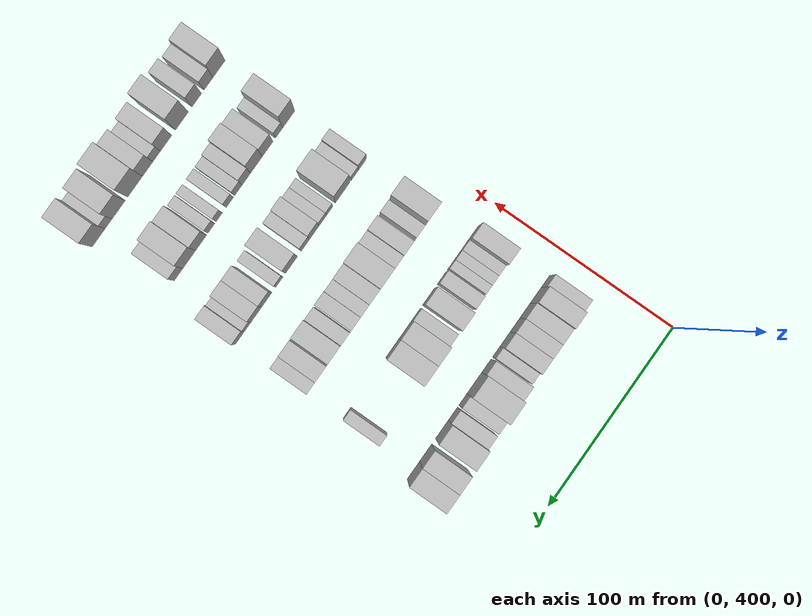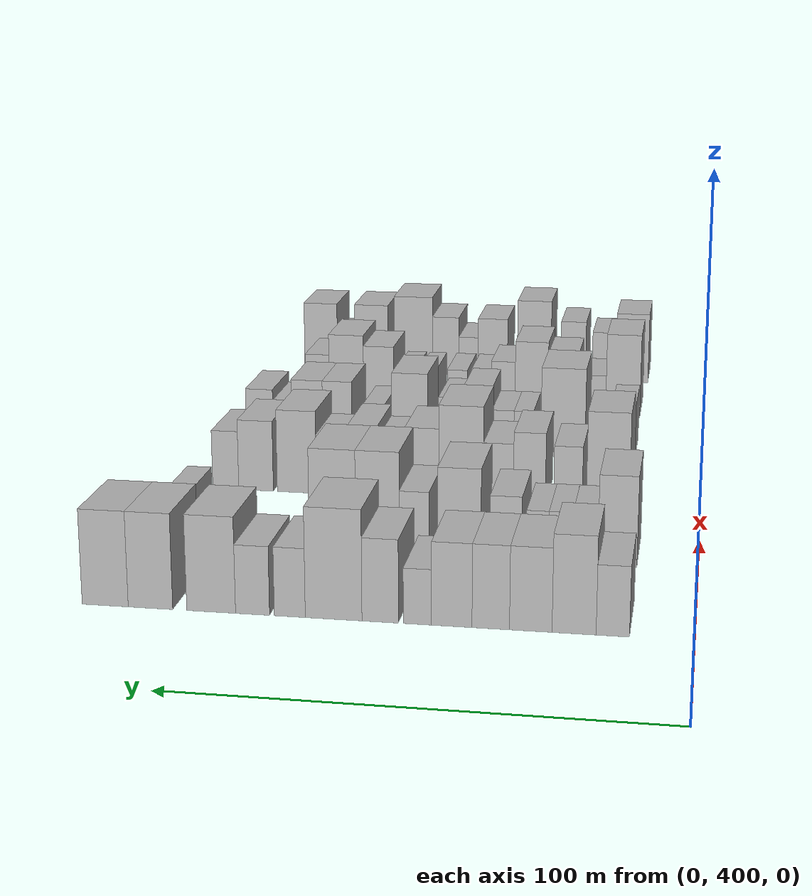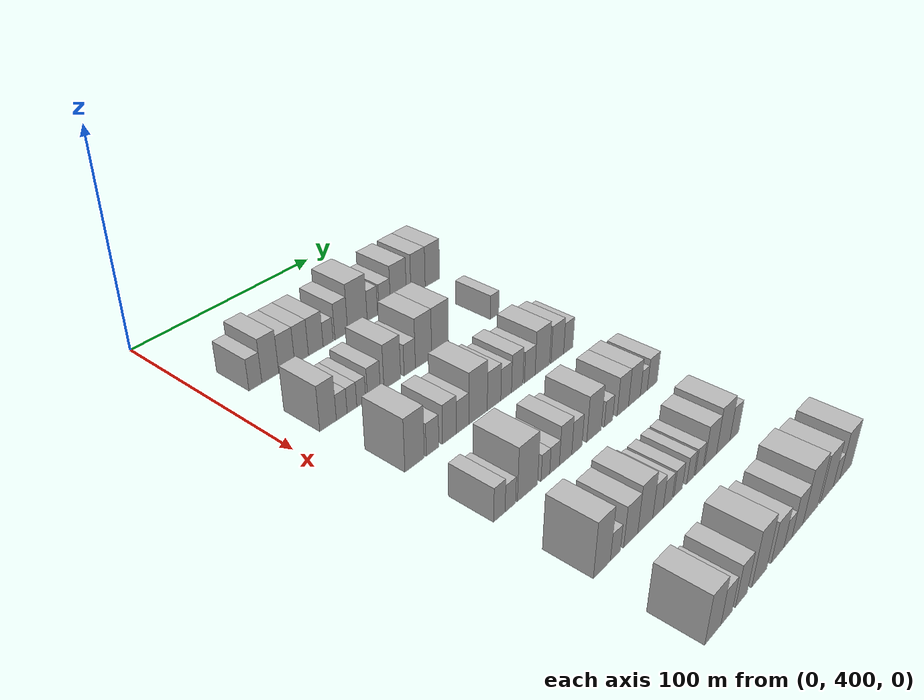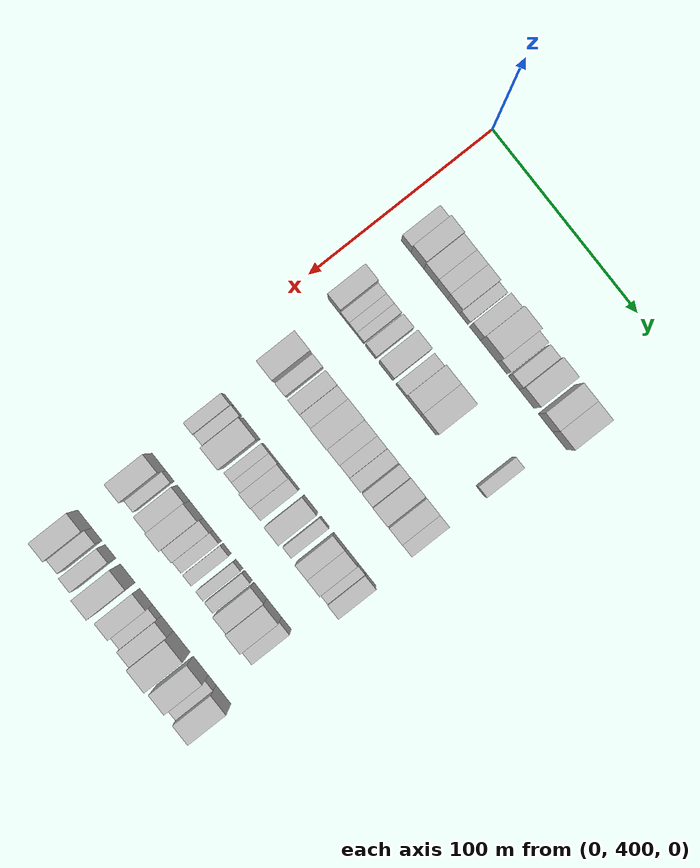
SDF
<sdf version="1.6">
 <world name="default">
  <model name="building_119">
   <static>1</static>
   <pose>50.0000 416.3820 0 0.000000 0.000000 0.000000</pose>
   <link name="link">
    <pose>0 0 7.50 0 0 0</pose>
    <collision name="collision"><geometry><box><size>20.0000 6.6826 15.0000</size></box></geometry></collision>
    <visual name="visual">
     <cast_shadows>0</cast_shadows>
     <geometry><box><size>20.0000 6.6826 15.0000</size></box></geometry>
     <material>
      <script>
       <uri>model://HANNAS_wall/materials/scripts</uri>
       <uri>model://HANNAS_wall/materials/textures</uri>
       <name>vrc/HANNAS_wall</name>
      </script>
     </material>
    </visual>
   </link>
  </model>
  <model name="building_120">
   <static>1</static>
   <pose>50.0000 424.1537 0 0.000000 0.000000 0.000000</pose>
   <link name="link">
    <pose>0 0 10.50 0 0 0</pose>
    <collision name="collision"><geometry><box><size>20.0000 8.8607 21.0000</size></box></geometry></collision>
    <visual name="visual">
     <cast_shadows>0</cast_shadows>
     <geometry><box><size>20.0000 8.8607 21.0000</size></box></geometry>
     <material>
      <script>
       <uri>model://HANNAS_wall/materials/scripts</uri>
       <uri>model://HANNAS_wall/materials/textures</uri>
       <name>vrc/HANNAS_wall</name>
      </script>
     </material>
    </visual>
   </link>
  </model>
  <model name="building_121">
   <static>1</static>
   <pose>50.0000 432.8886 0 0.000000 0.000000 0.000000</pose>
   <link name="link">
    <pose>0 0 9.00 0 0 0</pose>
    <collision name="collision"><geometry><box><size>20.0000 8.6093 18.0000</size></box></geometry></collision>
    <visual name="visual">
     <cast_shadows>0</cast_shadows>
     <geometry><box><size>20.0000 8.6093 18.0000</size></box></geometry>
     <material>
      <script>
       <uri>model://HANNAS_wall/materials/scripts</uri>
       <uri>model://HANNAS_wall/materials/textures</uri>
       <name>vrc/HANNAS_wall</name>
      </script>
     </material>
    </visual>
   </link>
  </model>
  <model name="building_122">
   <static>1</static>
   <pose>50.0000 441.0161 0 0.000000 0.000000 0.000000</pose>
   <link name="link">
    <pose>0 0 9.00 0 0 0</pose>
    <collision name="collision"><geometry><box><size>20.0000 7.6456 18.0000</size></box></geometry></collision>
    <visual name="visual">
     <cast_shadows>0</cast_shadows>
     <geometry><box><size>20.0000 7.6456 18.0000</size></box></geometry>
     <material>
      <script>
       <uri>model://HANNAS_wall/materials/scripts</uri>
       <uri>model://HANNAS_wall/materials/textures</uri>
       <name>vrc/HANNAS_wall</name>
      </script>
     </material>
    </visual>
   </link>
  </model>
  <model name="building_123">
   <static>1</static>
   <pose>50.0000 449.0002 0 0.000000 0.000000 0.000000</pose>
   <link name="link">
    <pose>0 0 9.00 0 0 0</pose>
    <collision name="collision"><geometry><box><size>20.0000 8.3225 18.0000</size></box></geometry></collision>
    <visual name="visual">
     <cast_shadows>0</cast_shadows>
     <geometry><box><size>20.0000 8.3225 18.0000</size></box></geometry>
     <material>
      <script>
       <uri>model://HANNAS_wall/materials/scripts</uri>
       <uri>model://HANNAS_wall/materials/textures</uri>
       <name>vrc/HANNAS_wall</name>
      </script>
     </material>
    </visual>
   </link>
  </model>
  <model name="building_124">
   <static>1</static>
   <pose>50.0000 456.0613 0 0.000000 0.000000 0.000000</pose>
   <link name="link">
    <pose>0 0 6.00 0 0 0</pose>
    <collision name="collision"><geometry><box><size>20.0000 5.7997 12.0000</size></box></geometry></collision>
    <visual name="visual">
     <cast_shadows>0</cast_shadows>
     <geometry><box><size>20.0000 5.7997 12.0000</size></box></geometry>
     <material>
      <script>
       <uri>model://HANNAS_wall/materials/scripts</uri>
       <uri>model://HANNAS_wall/materials/textures</uri>
       <name>vrc/HANNAS_wall</name>
      </script>
     </material>
    </visual>
   </link>
  </model>
  <model name="building_125">
   <static>1</static>
   <pose>50.0000 463.7421 0 0.000000 0.000000 0.000000</pose>
   <link name="link">
    <pose>0 0 9.00 0 0 0</pose>
    <collision name="collision"><geometry><box><size>20.0000 7.5619 18.0000</size></box></geometry></collision>
    <visual name="visual">
     <cast_shadows>0</cast_shadows>
     <geometry><box><size>20.0000 7.5619 18.0000</size></box></geometry>
     <material>
      <script>
       <uri>model://HANNAS_wall/materials/scripts</uri>
       <uri>model://HANNAS_wall/materials/textures</uri>
       <name>vrc/HANNAS_wall</name>
      </script>
     </material>
    </visual>
   </link>
  </model>
  <model name="building_126">
   <static>1</static>
   <pose>50.0000 473.4452 0 0.000000 0.000000 0.000000</pose>
   <link name="link">
    <pose>0 0 12.00 0 0 0</pose>
    <collision name="collision"><geometry><box><size>20.0000 11.8442 24.0000</size></box></geometry></collision>
    <visual name="visual">
     <cast_shadows>0</cast_shadows>
     <geometry><box><size>20.0000 11.8442 24.0000</size></box></geometry>
     <material>
      <script>
       <uri>model://HANNAS_wall/materials/scripts</uri>
       <uri>model://HANNAS_wall/materials/textures</uri>
       <name>vrc/HANNAS_wall</name>
      </script>
     </material>
    </visual>
   </link>
  </model>
  <model name="building_127">
   <static>1</static>
   <pose>50.0000 482.6233 0 0.000000 0.000000 0.000000</pose>
   <link name="link">
    <pose>0 0 7.50 0 0 0</pose>
    <collision name="collision"><geometry><box><size>20.0000 6.5120 15.0000</size></box></geometry></collision>
    <visual name="visual">
     <cast_shadows>0</cast_shadows>
     <geometry><box><size>20.0000 6.5120 15.0000</size></box></geometry>
     <material>
      <script>
       <uri>model://HANNAS_wall/materials/scripts</uri>
       <uri>model://HANNAS_wall/materials/textures</uri>
       <name>vrc/HANNAS_wall</name>
      </script>
     </material>
    </visual>
   </link>
  </model>
  <model name="building_128">
   <static>1</static>
   <pose>50.0000 490.4860 0 0.000000 0.000000 0.000000</pose>
   <link name="link">
    <pose>0 0 7.50 0 0 0</pose>
    <collision name="collision"><geometry><box><size>20.0000 7.2134 15.0000</size></box></geometry></collision>
    <visual name="visual">
     <cast_shadows>0</cast_shadows>
     <geometry><box><size>20.0000 7.2134 15.0000</size></box></geometry>
     <material>
      <script>
       <uri>model://HANNAS_wall/materials/scripts</uri>
       <uri>model://HANNAS_wall/materials/textures</uri>
       <name>vrc/HANNAS_wall</name>
      </script>
     </material>
    </visual>
   </link>
  </model>
  <model name="building_129">
   <static>1</static>
   <pose>50.0000 499.2937 0 0.000000 0.000000 0.000000</pose>
   <link name="link">
    <pose>0 0 10.50 0 0 0</pose>
    <collision name="collision"><geometry><box><size>20.0000 10.4020 21.0000</size></box></geometry></collision>
    <visual name="visual">
     <cast_shadows>0</cast_shadows>
     <geometry><box><size>20.0000 10.4020 21.0000</size></box></geometry>
     <material>
      <script>
       <uri>model://HANNAS_wall/materials/scripts</uri>
       <uri>model://HANNAS_wall/materials/textures</uri>
       <name>vrc/HANNAS_wall</name>
      </script>
     </material>
    </visual>
   </link>
  </model>
  <model name="building_130">
   <static>1</static>
   <pose>50.0000 512.2963 0 0.000000 0.000000 0.000000</pose>
   <link name="link">
    <pose>0 0 10.50 0 0 0</pose>
    <collision name="collision"><geometry><box><size>20.0000 9.6032 21.0000</size></box></geometry></collision>
    <visual name="visual">
     <cast_shadows>0</cast_shadows>
     <geometry><box><size>20.0000 9.6032 21.0000</size></box></geometry>
     <material>
      <script>
       <uri>model://HANNAS_wall/materials/scripts</uri>
       <uri>model://HANNAS_wall/materials/textures</uri>
       <name>vrc/HANNAS_wall</name>
      </script>
     </material>
    </visual>
   </link>
  </model>
  <model name="building_131">
   <static>1</static>
   <pose>50.0000 522.0898 0 0.000000 0.000000 0.000000</pose>
   <link name="link">
    <pose>0 0 10.50 0 0 0</pose>
    <collision name="collision"><geometry><box><size>20.0000 9.9838 21.0000</size></box></geometry></collision>
    <visual name="visual">
     <cast_shadows>0</cast_shadows>
     <geometry><box><size>20.0000 9.9838 21.0000</size></box></geometry>
     <material>
      <script>
       <uri>model://HANNAS_wall/materials/scripts</uri>
       <uri>model://HANNAS_wall/materials/textures</uri>
       <name>vrc/HANNAS_wall</name>
      </script>
     </material>
    </visual>
   </link>
  </model>
  <model name="building_257">
   <static>1</static>
   <pose>90.0000 417.7783 0 0.000000 0.000000 0.000000</pose>
   <link name="link">
    <pose>0 0 10.50 0 0 0</pose>
    <collision name="collision"><geometry><box><size>20.0000 8.6246 21.0000</size></box></geometry></collision>
    <visual name="visual">
     <cast_shadows>0</cast_shadows>
     <geometry><box><size>20.0000 8.6246 21.0000</size></box></geometry>
     <material>
      <script>
       <uri>model://HANNAS_wall/materials/scripts</uri>
       <uri>model://HANNAS_wall/materials/textures</uri>
       <name>vrc/HANNAS_wall</name>
      </script>
     </material>
    </visual>
   </link>
  </model>
  <model name="building_258">
   <static>1</static>
   <pose>90.0000 424.9296 0 0.000000 0.000000 0.000000</pose>
   <link name="link">
    <pose>0 0 6.00 0 0 0</pose>
    <collision name="collision"><geometry><box><size>20.0000 5.6781 12.0000</size></box></geometry></collision>
    <visual name="visual">
     <cast_shadows>0</cast_shadows>
     <geometry><box><size>20.0000 5.6781 12.0000</size></box></geometry>
     <material>
      <script>
       <uri>model://HANNAS_wall/materials/scripts</uri>
       <uri>model://HANNAS_wall/materials/textures</uri>
       <name>vrc/HANNAS_wall</name>
      </script>
     </material>
    </visual>
   </link>
  </model>
  <model name="building_259">
   <static>1</static>
   <pose>90.0000 430.3987 0 0.000000 0.000000 0.000000</pose>
   <link name="link">
    <pose>0 0 6.00 0 0 0</pose>
    <collision name="collision"><geometry><box><size>20.0000 5.2599 12.0000</size></box></geometry></collision>
    <visual name="visual">
     <cast_shadows>0</cast_shadows>
     <geometry><box><size>20.0000 5.2599 12.0000</size></box></geometry>
     <material>
      <script>
       <uri>model://HANNAS_wall/materials/scripts</uri>
       <uri>model://HANNAS_wall/materials/textures</uri>
       <name>vrc/HANNAS_wall</name>
      </script>
     </material>
    </visual>
   </link>
  </model>
  <model name="building_260">
   <static>1</static>
   <pose>90.0000 435.5072 0 0.000000 0.000000 0.000000</pose>
   <link name="link">
    <pose>0 0 6.00 0 0 0</pose>
    <collision name="collision"><geometry><box><size>20.0000 4.9571 12.0000</size></box></geometry></collision>
    <visual name="visual">
     <cast_shadows>0</cast_shadows>
     <geometry><box><size>20.0000 4.9571 12.0000</size></box></geometry>
     <material>
      <script>
       <uri>model://HANNAS_wall/materials/scripts</uri>
       <uri>model://HANNAS_wall/materials/textures</uri>
       <name>vrc/HANNAS_wall</name>
      </script>
     </material>
    </visual>
   </link>
  </model>
  <model name="building_261">
   <static>1</static>
   <pose>90.0000 442.5650 0 0.000000 0.000000 0.000000</pose>
   <link name="link">
    <pose>0 0 7.50 0 0 0</pose>
    <collision name="collision"><geometry><box><size>20.0000 7.1585 15.0000</size></box></geometry></collision>
    <visual name="visual">
     <cast_shadows>0</cast_shadows>
     <geometry><box><size>20.0000 7.1585 15.0000</size></box></geometry>
     <material>
      <script>
       <uri>model://HANNAS_wall/materials/scripts</uri>
       <uri>model://HANNAS_wall/materials/textures</uri>
       <name>vrc/HANNAS_wall</name>
      </script>
     </material>
    </visual>
   </link>
  </model>
  <model name="building_262">
   <static>1</static>
   <pose>90.0000 452.9980 0 0.000000 0.000000 0.000000</pose>
   <link name="link">
    <pose>0 0 10.50 0 0 0</pose>
    <collision name="collision"><geometry><box><size>20.0000 9.7073 21.0000</size></box></geometry></collision>
    <visual name="visual">
     <cast_shadows>0</cast_shadows>
     <geometry><box><size>20.0000 9.7073 21.0000</size></box></geometry>
     <material>
      <script>
       <uri>model://HANNAS_wall/materials/scripts</uri>
       <uri>model://HANNAS_wall/materials/textures</uri>
       <name>vrc/HANNAS_wall</name>
      </script>
     </material>
    </visual>
   </link>
  </model>
  <model name="building_263">
   <static>1</static>
   <pose>90.0000 463.2258 0 0.000000 0.000000 0.000000</pose>
   <link name="link">
    <pose>0 0 7.50 0 0 0</pose>
    <collision name="collision"><geometry><box><size>20.0000 6.7483 15.0000</size></box></geometry></collision>
    <visual name="visual">
     <cast_shadows>0</cast_shadows>
     <geometry><box><size>20.0000 6.7483 15.0000</size></box></geometry>
     <material>
      <script>
       <uri>model://HANNAS_wall/materials/scripts</uri>
       <uri>model://HANNAS_wall/materials/textures</uri>
       <name>vrc/HANNAS_wall</name>
      </script>
     </material>
    </visual>
   </link>
  </model>
  <model name="building_264">
   <static>1</static>
   <pose>90.0000 471.5763 0 0.000000 0.000000 0.000000</pose>
   <link name="link">
    <pose>0 0 12.00 0 0 0</pose>
    <collision name="collision"><geometry><box><size>20.0000 9.9528 24.0000</size></box></geometry></collision>
    <visual name="visual">
     <cast_shadows>0</cast_shadows>
     <geometry><box><size>20.0000 9.9528 24.0000</size></box></geometry>
     <material>
      <script>
       <uri>model://HANNAS_wall/materials/scripts</uri>
       <uri>model://HANNAS_wall/materials/textures</uri>
       <name>vrc/HANNAS_wall</name>
      </script>
     </material>
    </visual>
   </link>
  </model>
  <model name="building_265">
   <static>1</static>
   <pose>90.0000 481.8844 0 0.000000 0.000000 0.000000</pose>
   <link name="link">
    <pose>0 0 12.00 0 0 0</pose>
    <collision name="collision"><geometry><box><size>20.0000 10.6632 24.0000</size></box></geometry></collision>
    <visual name="visual">
     <cast_shadows>0</cast_shadows>
     <geometry><box><size>20.0000 10.6632 24.0000</size></box></geometry>
     <material>
      <script>
       <uri>model://HANNAS_wall/materials/scripts</uri>
       <uri>model://HANNAS_wall/materials/textures</uri>
       <name>vrc/HANNAS_wall</name>
      </script>
     </material>
    </visual>
   </link>
  </model>
  <model name="building_266">
   <static>1</static>
   <pose>90.0000 517.9905 0 0.000000 0.000000 0.000000</pose>
   <link name="link">
    <pose>0 0 6.00 0 0 0</pose>
    <collision name="collision"><geometry><box><size>20.0000 5.8497 12.0000</size></box></geometry></collision>
    <visual name="visual">
     <cast_shadows>0</cast_shadows>
     <geometry><box><size>20.0000 5.8497 12.0000</size></box></geometry>
     <material>
      <script>
       <uri>model://HANNAS_wall/materials/scripts</uri>
       <uri>model://HANNAS_wall/materials/textures</uri>
       <name>vrc/HANNAS_wall</name>
      </script>
     </material>
    </visual>
   </link>
  </model>
  <model name="building_398">
   <static>1</static>
   <pose>130.0000 422.3499 0 0.000000 0.000000 0.000000</pose>
   <link name="link">
    <pose>0 0 12.00 0 0 0</pose>
    <collision name="collision"><geometry><box><size>20.0000 10.3497 24.0000</size></box></geometry></collision>
    <visual name="visual">
     <cast_shadows>0</cast_shadows>
     <geometry><box><size>20.0000 10.3497 24.0000</size></box></geometry>
     <material>
      <script>
       <uri>model://HANNAS_wall/materials/scripts</uri>
       <uri>model://HANNAS_wall/materials/textures</uri>
       <name>vrc/HANNAS_wall</name>
      </script>
     </material>
    </visual>
   </link>
  </model>
  <model name="building_399">
   <static>1</static>
   <pose>130.0000 431.9917 0 0.000000 0.000000 0.000000</pose>
   <link name="link">
    <pose>0 0 7.50 0 0 0</pose>
    <collision name="collision"><geometry><box><size>20.0000 6.9340 15.0000</size></box></geometry></collision>
    <visual name="visual">
     <cast_shadows>0</cast_shadows>
     <geometry><box><size>20.0000 6.9340 15.0000</size></box></geometry>
     <material>
      <script>
       <uri>model://HANNAS_wall/materials/scripts</uri>
       <uri>model://HANNAS_wall/materials/textures</uri>
       <name>vrc/HANNAS_wall</name>
      </script>
     </material>
    </visual>
   </link>
  </model>
  <model name="building_400">
   <static>1</static>
   <pose>130.0000 441.3629 0 0.000000 0.000000 0.000000</pose>
   <link name="link">
    <pose>0 0 9.00 0 0 0</pose>
    <collision name="collision"><geometry><box><size>20.0000 7.8083 18.0000</size></box></geometry></collision>
    <visual name="visual">
     <cast_shadows>0</cast_shadows>
     <geometry><box><size>20.0000 7.8083 18.0000</size></box></geometry>
     <material>
      <script>
       <uri>model://HANNAS_wall/materials/scripts</uri>
       <uri>model://HANNAS_wall/materials/textures</uri>
       <name>vrc/HANNAS_wall</name>
      </script>
     </material>
    </visual>
   </link>
  </model>
  <model name="building_401">
   <static>1</static>
   <pose>130.0000 448.9552 0 0.000000 0.000000 0.000000</pose>
   <link name="link">
    <pose>0 0 7.50 0 0 0</pose>
    <collision name="collision"><geometry><box><size>20.0000 7.3763 15.0000</size></box></geometry></collision>
    <visual name="visual">
     <cast_shadows>0</cast_shadows>
     <geometry><box><size>20.0000 7.3763 15.0000</size></box></geometry>
     <material>
      <script>
       <uri>model://HANNAS_wall/materials/scripts</uri>
       <uri>model://HANNAS_wall/materials/textures</uri>
       <name>vrc/HANNAS_wall</name>
      </script>
     </material>
    </visual>
   </link>
  </model>
  <model name="building_402">
   <static>1</static>
   <pose>130.0000 458.1351 0 0.000000 0.000000 0.000000</pose>
   <link name="link">
    <pose>0 0 12.00 0 0 0</pose>
    <collision name="collision"><geometry><box><size>20.0000 10.9835 24.0000</size></box></geometry></collision>
    <visual name="visual">
     <cast_shadows>0</cast_shadows>
     <geometry><box><size>20.0000 10.9835 24.0000</size></box></geometry>
     <material>
      <script>
       <uri>model://HANNAS_wall/materials/scripts</uri>
       <uri>model://HANNAS_wall/materials/textures</uri>
       <name>vrc/HANNAS_wall</name>
      </script>
     </material>
    </visual>
   </link>
  </model>
  <model name="building_403">
   <static>1</static>
   <pose>130.0000 467.8140 0 0.000000 0.000000 0.000000</pose>
   <link name="link">
    <pose>0 0 9.00 0 0 0</pose>
    <collision name="collision"><geometry><box><size>20.0000 8.3742 18.0000</size></box></geometry></collision>
    <visual name="visual">
     <cast_shadows>0</cast_shadows>
     <geometry><box><size>20.0000 8.3742 18.0000</size></box></geometry>
     <material>
      <script>
       <uri>model://HANNAS_wall/materials/scripts</uri>
       <uri>model://HANNAS_wall/materials/textures</uri>
       <name>vrc/HANNAS_wall</name>
      </script>
     </material>
    </visual>
   </link>
  </model>
  <model name="building_404">
   <static>1</static>
   <pose>130.0000 475.3813 0 0.000000 0.000000 0.000000</pose>
   <link name="link">
    <pose>0 0 7.50 0 0 0</pose>
    <collision name="collision"><geometry><box><size>20.0000 6.7606 15.0000</size></box></geometry></collision>
    <visual name="visual">
     <cast_shadows>0</cast_shadows>
     <geometry><box><size>20.0000 6.7606 15.0000</size></box></geometry>
     <material>
      <script>
       <uri>model://HANNAS_wall/materials/scripts</uri>
       <uri>model://HANNAS_wall/materials/textures</uri>
       <name>vrc/HANNAS_wall</name>
      </script>
     </material>
    </visual>
   </link>
  </model>
  <model name="building_405">
   <static>1</static>
   <pose>130.0000 482.4422 0 0.000000 0.000000 0.000000</pose>
   <link name="link">
    <pose>0 0 9.00 0 0 0</pose>
    <collision name="collision"><geometry><box><size>20.0000 7.3611 18.0000</size></box></geometry></collision>
    <visual name="visual">
     <cast_shadows>0</cast_shadows>
     <geometry><box><size>20.0000 7.3611 18.0000</size></box></geometry>
     <material>
      <script>
       <uri>model://HANNAS_wall/materials/scripts</uri>
       <uri>model://HANNAS_wall/materials/textures</uri>
       <name>vrc/HANNAS_wall</name>
      </script>
     </material>
    </visual>
   </link>
  </model>
  <model name="building_406">
   <static>1</static>
   <pose>130.0000 490.6589 0 0.000000 0.000000 0.000000</pose>
   <link name="link">
    <pose>0 0 7.50 0 0 0</pose>
    <collision name="collision"><geometry><box><size>20.0000 7.0724 15.0000</size></box></geometry></collision>
    <visual name="visual">
     <cast_shadows>0</cast_shadows>
     <geometry><box><size>20.0000 7.0724 15.0000</size></box></geometry>
     <material>
      <script>
       <uri>model://HANNAS_wall/materials/scripts</uri>
       <uri>model://HANNAS_wall/materials/textures</uri>
       <name>vrc/HANNAS_wall</name>
      </script>
     </material>
    </visual>
   </link>
  </model>
  <model name="building_407">
   <static>1</static>
   <pose>130.0000 499.1270 0 0.000000 0.000000 0.000000</pose>
   <link name="link">
    <pose>0 0 10.50 0 0 0</pose>
    <collision name="collision"><geometry><box><size>20.0000 9.8638 21.0000</size></box></geometry></collision>
    <visual name="visual">
     <cast_shadows>0</cast_shadows>
     <geometry><box><size>20.0000 9.8638 21.0000</size></box></geometry>
     <material>
      <script>
       <uri>model://HANNAS_wall/materials/scripts</uri>
       <uri>model://HANNAS_wall/materials/textures</uri>
       <name>vrc/HANNAS_wall</name>
      </script>
     </material>
    </visual>
   </link>
  </model>
  <model name="building_408">
   <static>1</static>
   <pose>130.0000 509.4749 0 0.000000 0.000000 0.000000</pose>
   <link name="link">
    <pose>0 0 9.00 0 0 0</pose>
    <collision name="collision"><geometry><box><size>20.0000 8.8320 18.0000</size></box></geometry></collision>
    <visual name="visual">
     <cast_shadows>0</cast_shadows>
     <geometry><box><size>20.0000 8.8320 18.0000</size></box></geometry>
     <material>
      <script>
       <uri>model://HANNAS_wall/materials/scripts</uri>
       <uri>model://HANNAS_wall/materials/textures</uri>
       <name>vrc/HANNAS_wall</name>
      </script>
     </material>
    </visual>
   </link>
  </model>
  <model name="building_409">
   <static>1</static>
   <pose>130.0000 517.2135 0 0.000000 0.000000 0.000000</pose>
   <link name="link">
    <pose>0 0 7.50 0 0 0</pose>
    <collision name="collision"><geometry><box><size>20.0000 6.6451 15.0000</size></box></geometry></collision>
    <visual name="visual">
     <cast_shadows>0</cast_shadows>
     <geometry><box><size>20.0000 6.6451 15.0000</size></box></geometry>
     <material>
      <script>
       <uri>model://HANNAS_wall/materials/scripts</uri>
       <uri>model://HANNAS_wall/materials/textures</uri>
       <name>vrc/HANNAS_wall</name>
      </script>
     </material>
    </visual>
   </link>
  </model>
  <model name="building_539">
   <static>1</static>
   <pose>170.0000 420.8889 0 0.000000 0.000000 0.000000</pose>
   <link name="link">
    <pose>0 0 7.50 0 0 0</pose>
    <collision name="collision"><geometry><box><size>20.0000 6.2106 15.0000</size></box></geometry></collision>
    <visual name="visual">
     <cast_shadows>0</cast_shadows>
     <geometry><box><size>20.0000 6.2106 15.0000</size></box></geometry>
     <material>
      <script>
       <uri>model://HANNAS_wall/materials/scripts</uri>
       <uri>model://HANNAS_wall/materials/textures</uri>
       <name>vrc/HANNAS_wall</name>
      </script>
     </material>
    </visual>
   </link>
  </model>
  <model name="building_540">
   <static>1</static>
   <pose>170.0000 426.9028 0 0.000000 0.000000 0.000000</pose>
   <link name="link">
    <pose>0 0 6.00 0 0 0</pose>
    <collision name="collision"><geometry><box><size>20.0000 5.8173 12.0000</size></box></geometry></collision>
    <visual name="visual">
     <cast_shadows>0</cast_shadows>
     <geometry><box><size>20.0000 5.8173 12.0000</size></box></geometry>
     <material>
      <script>
       <uri>model://HANNAS_wall/materials/scripts</uri>
       <uri>model://HANNAS_wall/materials/textures</uri>
       <name>vrc/HANNAS_wall</name>
      </script>
     </material>
    </visual>
   </link>
  </model>
  <model name="building_541">
   <static>1</static>
   <pose>170.0000 436.6238 0 0.000000 0.000000 0.000000</pose>
   <link name="link">
    <pose>0 0 12.00 0 0 0</pose>
    <collision name="collision"><geometry><box><size>20.0000 11.6246 24.0000</size></box></geometry></collision>
    <visual name="visual">
     <cast_shadows>0</cast_shadows>
     <geometry><box><size>20.0000 11.6246 24.0000</size></box></geometry>
     <material>
      <script>
       <uri>model://HANNAS_wall/materials/scripts</uri>
       <uri>model://HANNAS_wall/materials/textures</uri>
       <name>vrc/HANNAS_wall</name>
      </script>
     </material>
    </visual>
   </link>
  </model>
  <model name="building_542">
   <static>1</static>
   <pose>170.0000 447.0094 0 0.000000 0.000000 0.000000</pose>
   <link name="link">
    <pose>0 0 6.00 0 0 0</pose>
    <collision name="collision"><geometry><box><size>20.0000 5.1467 12.0000</size></box></geometry></collision>
    <visual name="visual">
     <cast_shadows>0</cast_shadows>
     <geometry><box><size>20.0000 5.1467 12.0000</size></box></geometry>
     <material>
      <script>
       <uri>model://HANNAS_wall/materials/scripts</uri>
       <uri>model://HANNAS_wall/materials/textures</uri>
       <name>vrc/HANNAS_wall</name>
      </script>
     </material>
    </visual>
   </link>
  </model>
  <model name="building_543">
   <static>1</static>
   <pose>170.0000 452.4961 0 0.000000 0.000000 0.000000</pose>
   <link name="link">
    <pose>0 0 6.00 0 0 0</pose>
    <collision name="collision"><geometry><box><size>20.0000 5.8267 12.0000</size></box></geometry></collision>
    <visual name="visual">
     <cast_shadows>0</cast_shadows>
     <geometry><box><size>20.0000 5.8267 12.0000</size></box></geometry>
     <material>
      <script>
       <uri>model://HANNAS_wall/materials/scripts</uri>
       <uri>model://HANNAS_wall/materials/textures</uri>
       <name>vrc/HANNAS_wall</name>
      </script>
     </material>
    </visual>
   </link>
  </model>
  <model name="building_544">
   <static>1</static>
   <pose>170.0000 459.2327 0 0.000000 0.000000 0.000000</pose>
   <link name="link">
    <pose>0 0 9.00 0 0 0</pose>
    <collision name="collision"><geometry><box><size>20.0000 7.6466 18.0000</size></box></geometry></collision>
    <visual name="visual">
     <cast_shadows>0</cast_shadows>
     <geometry><box><size>20.0000 7.6466 18.0000</size></box></geometry>
     <material>
      <script>
       <uri>model://HANNAS_wall/materials/scripts</uri>
       <uri>model://HANNAS_wall/materials/textures</uri>
       <name>vrc/HANNAS_wall</name>
      </script>
     </material>
    </visual>
   </link>
  </model>
  <model name="building_545">
   <static>1</static>
   <pose>170.0000 466.3379 0 0.000000 0.000000 0.000000</pose>
   <link name="link">
    <pose>0 0 7.50 0 0 0</pose>
    <collision name="collision"><geometry><box><size>20.0000 6.5640 15.0000</size></box></geometry></collision>
    <visual name="visual">
     <cast_shadows>0</cast_shadows>
     <geometry><box><size>20.0000 6.5640 15.0000</size></box></geometry>
     <material>
      <script>
       <uri>model://HANNAS_wall/materials/scripts</uri>
       <uri>model://HANNAS_wall/materials/textures</uri>
       <name>vrc/HANNAS_wall</name>
      </script>
     </material>
    </visual>
   </link>
  </model>
  <model name="building_546">
   <static>1</static>
   <pose>170.0000 477.4039 0 0.000000 0.000000 0.000000</pose>
   <link name="link">
    <pose>0 0 10.50 0 0 0</pose>
    <collision name="collision"><geometry><box><size>20.0000 9.5679 21.0000</size></box></geometry></collision>
    <visual name="visual">
     <cast_shadows>0</cast_shadows>
     <geometry><box><size>20.0000 9.5679 21.0000</size></box></geometry>
     <material>
      <script>
       <uri>model://HANNAS_wall/materials/scripts</uri>
       <uri>model://HANNAS_wall/materials/textures</uri>
       <name>vrc/HANNAS_wall</name>
      </script>
     </material>
    </visual>
   </link>
  </model>
  <model name="building_547">
   <static>1</static>
   <pose>170.0000 487.0751 0 0.000000 0.000000 0.000000</pose>
   <link name="link">
    <pose>0 0 6.00 0 0 0</pose>
    <collision name="collision"><geometry><box><size>20.0000 5.7746 12.0000</size></box></geometry></collision>
    <visual name="visual">
     <cast_shadows>0</cast_shadows>
     <geometry><box><size>20.0000 5.7746 12.0000</size></box></geometry>
     <material>
      <script>
       <uri>model://HANNAS_wall/materials/scripts</uri>
       <uri>model://HANNAS_wall/materials/textures</uri>
       <name>vrc/HANNAS_wall</name>
      </script>
     </material>
    </visual>
   </link>
  </model>
  <model name="building_548">
   <static>1</static>
   <pose>170.0000 496.9566 0 0.000000 0.000000 0.000000</pose>
   <link name="link">
    <pose>0 0 9.00 0 0 0</pose>
    <collision name="collision"><geometry><box><size>20.0000 7.9883 18.0000</size></box></geometry></collision>
    <visual name="visual">
     <cast_shadows>0</cast_shadows>
     <geometry><box><size>20.0000 7.9883 18.0000</size></box></geometry>
     <material>
      <script>
       <uri>model://HANNAS_wall/materials/scripts</uri>
       <uri>model://HANNAS_wall/materials/textures</uri>
       <name>vrc/HANNAS_wall</name>
      </script>
     </material>
    </visual>
   </link>
  </model>
  <model name="building_549">
   <static>1</static>
   <pose>170.0000 505.1966 0 0.000000 0.000000 0.000000</pose>
   <link name="link">
    <pose>0 0 9.00 0 0 0</pose>
    <collision name="collision"><geometry><box><size>20.0000 8.4916 18.0000</size></box></geometry></collision>
    <visual name="visual">
     <cast_shadows>0</cast_shadows>
     <geometry><box><size>20.0000 8.4916 18.0000</size></box></geometry>
     <material>
      <script>
       <uri>model://HANNAS_wall/materials/scripts</uri>
       <uri>model://HANNAS_wall/materials/textures</uri>
       <name>vrc/HANNAS_wall</name>
      </script>
     </material>
    </visual>
   </link>
  </model>
  <model name="building_550">
   <static>1</static>
   <pose>170.0000 512.0002 0 0.000000 0.000000 0.000000</pose>
   <link name="link">
    <pose>0 0 6.00 0 0 0</pose>
    <collision name="collision"><geometry><box><size>20.0000 5.1157 12.0000</size></box></geometry></collision>
    <visual name="visual">
     <cast_shadows>0</cast_shadows>
     <geometry><box><size>20.0000 5.1157 12.0000</size></box></geometry>
     <material>
      <script>
       <uri>model://HANNAS_wall/materials/scripts</uri>
       <uri>model://HANNAS_wall/materials/textures</uri>
       <name>vrc/HANNAS_wall</name>
      </script>
     </material>
    </visual>
   </link>
  </model>
  <model name="building_551">
   <static>1</static>
   <pose>170.0000 518.2569 0 0.000000 0.000000 0.000000</pose>
   <link name="link">
    <pose>0 0 7.50 0 0 0</pose>
    <collision name="collision"><geometry><box><size>20.0000 7.3976 15.0000</size></box></geometry></collision>
    <visual name="visual">
     <cast_shadows>0</cast_shadows>
     <geometry><box><size>20.0000 7.3976 15.0000</size></box></geometry>
     <material>
      <script>
       <uri>model://HANNAS_wall/materials/scripts</uri>
       <uri>model://HANNAS_wall/materials/textures</uri>
       <name>vrc/HANNAS_wall</name>
      </script>
     </material>
    </visual>
   </link>
  </model>
  <model name="building_676">
   <static>1</static>
   <pose>210.0000 423.1209 0 0.000000 0.000000 0.000000</pose>
   <link name="link">
    <pose>0 0 12.00 0 0 0</pose>
    <collision name="collision"><geometry><box><size>20.0000 9.6042 24.0000</size></box></geometry></collision>
    <visual name="visual">
     <cast_shadows>0</cast_shadows>
     <geometry><box><size>20.0000 9.6042 24.0000</size></box></geometry>
     <material>
      <script>
       <uri>model://HANNAS_wall/materials/scripts</uri>
       <uri>model://HANNAS_wall/materials/textures</uri>
       <name>vrc/HANNAS_wall</name>
      </script>
     </material>
    </visual>
   </link>
  </model>
  <model name="building_677">
   <static>1</static>
   <pose>210.0000 430.8359 0 0.000000 0.000000 0.000000</pose>
   <link name="link">
    <pose>0 0 6.00 0 0 0</pose>
    <collision name="collision"><geometry><box><size>20.0000 5.8259 12.0000</size></box></geometry></collision>
    <visual name="visual">
     <cast_shadows>0</cast_shadows>
     <geometry><box><size>20.0000 5.8259 12.0000</size></box></geometry>
     <material>
      <script>
       <uri>model://HANNAS_wall/materials/scripts</uri>
       <uri>model://HANNAS_wall/materials/textures</uri>
       <name>vrc/HANNAS_wall</name>
      </script>
     </material>
    </visual>
   </link>
  </model>
  <model name="building_678">
   <static>1</static>
   <pose>210.0000 440.0142 0 0.000000 0.000000 0.000000</pose>
   <link name="link">
    <pose>0 0 9.00 0 0 0</pose>
    <collision name="collision"><geometry><box><size>20.0000 8.5305 18.0000</size></box></geometry></collision>
    <visual name="visual">
     <cast_shadows>0</cast_shadows>
     <geometry><box><size>20.0000 8.5305 18.0000</size></box></geometry>
     <material>
      <script>
       <uri>model://HANNAS_wall/materials/scripts</uri>
       <uri>model://HANNAS_wall/materials/textures</uri>
       <name>vrc/HANNAS_wall</name>
      </script>
     </material>
    </visual>
   </link>
  </model>
  <model name="building_679">
   <static>1</static>
   <pose>210.0000 448.9659 0 0.000000 0.000000 0.000000</pose>
   <link name="link">
    <pose>0 0 10.50 0 0 0</pose>
    <collision name="collision"><geometry><box><size>20.0000 9.3729 21.0000</size></box></geometry></collision>
    <visual name="visual">
     <cast_shadows>0</cast_shadows>
     <geometry><box><size>20.0000 9.3729 21.0000</size></box></geometry>
     <material>
      <script>
       <uri>model://HANNAS_wall/materials/scripts</uri>
       <uri>model://HANNAS_wall/materials/textures</uri>
       <name>vrc/HANNAS_wall</name>
      </script>
     </material>
    </visual>
   </link>
  </model>
  <model name="building_680">
   <static>1</static>
   <pose>210.0000 457.0475 0 0.000000 0.000000 0.000000</pose>
   <link name="link">
    <pose>0 0 7.50 0 0 0</pose>
    <collision name="collision"><geometry><box><size>20.0000 6.7903 15.0000</size></box></geometry></collision>
    <visual name="visual">
     <cast_shadows>0</cast_shadows>
     <geometry><box><size>20.0000 6.7903 15.0000</size></box></geometry>
     <material>
      <script>
       <uri>model://HANNAS_wall/materials/scripts</uri>
       <uri>model://HANNAS_wall/materials/textures</uri>
       <name>vrc/HANNAS_wall</name>
      </script>
     </material>
    </visual>
   </link>
  </model>
  <model name="building_681">
   <static>1</static>
   <pose>210.0000 463.3824 0 0.000000 0.000000 0.000000</pose>
   <link name="link">
    <pose>0 0 6.00 0 0 0</pose>
    <collision name="collision"><geometry><box><size>20.0000 5.8795 12.0000</size></box></geometry></collision>
    <visual name="visual">
     <cast_shadows>0</cast_shadows>
     <geometry><box><size>20.0000 5.8795 12.0000</size></box></geometry>
     <material>
      <script>
       <uri>model://HANNAS_wall/materials/scripts</uri>
       <uri>model://HANNAS_wall/materials/textures</uri>
       <name>vrc/HANNAS_wall</name>
      </script>
     </material>
    </visual>
   </link>
  </model>
  <model name="building_682">
   <static>1</static>
   <pose>210.0000 470.2117 0 0.000000 0.000000 0.000000</pose>
   <link name="link">
    <pose>0 0 6.00 0 0 0</pose>
    <collision name="collision"><geometry><box><size>20.0000 5.7790 12.0000</size></box></geometry></collision>
    <visual name="visual">
     <cast_shadows>0</cast_shadows>
     <geometry><box><size>20.0000 5.7790 12.0000</size></box></geometry>
     <material>
      <script>
       <uri>model://HANNAS_wall/materials/scripts</uri>
       <uri>model://HANNAS_wall/materials/textures</uri>
       <name>vrc/HANNAS_wall</name>
      </script>
     </material>
    </visual>
   </link>
  </model>
  <model name="building_683">
   <static>1</static>
   <pose>210.0000 478.5978 0 0.000000 0.000000 0.000000</pose>
   <link name="link">
    <pose>0 0 6.00 0 0 0</pose>
    <collision name="collision"><geometry><box><size>20.0000 4.9932 12.0000</size></box></geometry></collision>
    <visual name="visual">
     <cast_shadows>0</cast_shadows>
     <geometry><box><size>20.0000 4.9932 12.0000</size></box></geometry>
     <material>
      <script>
       <uri>model://HANNAS_wall/materials/scripts</uri>
       <uri>model://HANNAS_wall/materials/textures</uri>
       <name>vrc/HANNAS_wall</name>
      </script>
     </material>
    </visual>
   </link>
  </model>
  <model name="building_684">
   <static>1</static>
   <pose>210.0000 484.8563 0 0.000000 0.000000 0.000000</pose>
   <link name="link">
    <pose>0 0 6.00 0 0 0</pose>
    <collision name="collision"><geometry><box><size>20.0000 5.5238 12.0000</size></box></geometry></collision>
    <visual name="visual">
     <cast_shadows>0</cast_shadows>
     <geometry><box><size>20.0000 5.5238 12.0000</size></box></geometry>
     <material>
      <script>
       <uri>model://HANNAS_wall/materials/scripts</uri>
       <uri>model://HANNAS_wall/materials/textures</uri>
       <name>vrc/HANNAS_wall</name>
      </script>
     </material>
    </visual>
   </link>
  </model>
  <model name="building_685">
   <static>1</static>
   <pose>210.0000 493.0065 0 0.000000 0.000000 0.000000</pose>
   <link name="link">
    <pose>0 0 9.00 0 0 0</pose>
    <collision name="collision"><geometry><box><size>20.0000 8.7766 18.0000</size></box></geometry></collision>
    <visual name="visual">
     <cast_shadows>0</cast_shadows>
     <geometry><box><size>20.0000 8.7766 18.0000</size></box></geometry>
     <material>
      <script>
       <uri>model://HANNAS_wall/materials/scripts</uri>
       <uri>model://HANNAS_wall/materials/textures</uri>
       <name>vrc/HANNAS_wall</name>
      </script>
     </material>
    </visual>
   </link>
  </model>
  <model name="building_686">
   <static>1</static>
   <pose>210.0000 502.4386 0 0.000000 0.000000 0.000000</pose>
   <link name="link">
    <pose>0 0 10.50 0 0 0</pose>
    <collision name="collision"><geometry><box><size>20.0000 10.0875 21.0000</size></box></geometry></collision>
    <visual name="visual">
     <cast_shadows>0</cast_shadows>
     <geometry><box><size>20.0000 10.0875 21.0000</size></box></geometry>
     <material>
      <script>
       <uri>model://HANNAS_wall/materials/scripts</uri>
       <uri>model://HANNAS_wall/materials/textures</uri>
       <name>vrc/HANNAS_wall</name>
      </script>
     </material>
    </visual>
   </link>
  </model>
  <model name="building_687">
   <static>1</static>
   <pose>210.0000 510.9200 0 0.000000 0.000000 0.000000</pose>
   <link name="link">
    <pose>0 0 7.50 0 0 0</pose>
    <collision name="collision"><geometry><box><size>20.0000 6.8754 15.0000</size></box></geometry></collision>
    <visual name="visual">
     <cast_shadows>0</cast_shadows>
     <geometry><box><size>20.0000 6.8754 15.0000</size></box></geometry>
     <material>
      <script>
       <uri>model://HANNAS_wall/materials/scripts</uri>
       <uri>model://HANNAS_wall/materials/textures</uri>
       <name>vrc/HANNAS_wall</name>
      </script>
     </material>
    </visual>
   </link>
  </model>
  <model name="building_821">
   <static>1</static>
   <pose>250.0000 422.5095 0 0.000000 0.000000 0.000000</pose>
   <link name="link">
    <pose>0 0 10.50 0 0 0</pose>
    <collision name="collision"><geometry><box><size>20.0000 9.6941 21.0000</size></box></geometry></collision>
    <visual name="visual">
     <cast_shadows>0</cast_shadows>
     <geometry><box><size>20.0000 9.6941 21.0000</size></box></geometry>
     <material>
      <script>
       <uri>model://HANNAS_wall/materials/scripts</uri>
       <uri>model://HANNAS_wall/materials/textures</uri>
       <name>vrc/HANNAS_wall</name>
      </script>
     </material>
    </visual>
   </link>
  </model>
  <model name="building_822">
   <static>1</static>
   <pose>250.0000 430.9420 0 0.000000 0.000000 0.000000</pose>
   <link name="link">
    <pose>0 0 7.50 0 0 0</pose>
    <collision name="collision"><geometry><box><size>20.0000 7.1709 15.0000</size></box></geometry></collision>
    <visual name="visual">
     <cast_shadows>0</cast_shadows>
     <geometry><box><size>20.0000 7.1709 15.0000</size></box></geometry>
     <material>
      <script>
       <uri>model://HANNAS_wall/materials/scripts</uri>
       <uri>model://HANNAS_wall/materials/textures</uri>
       <name>vrc/HANNAS_wall</name>
      </script>
     </material>
    </visual>
   </link>
  </model>
  <model name="building_823">
   <static>1</static>
   <pose>250.0000 440.3002 0 0.000000 0.000000 0.000000</pose>
   <link name="link">
    <pose>0 0 9.00 0 0 0</pose>
    <collision name="collision"><geometry><box><size>20.0000 7.5455 18.0000</size></box></geometry></collision>
    <visual name="visual">
     <cast_shadows>0</cast_shadows>
     <geometry><box><size>20.0000 7.5455 18.0000</size></box></geometry>
     <material>
      <script>
       <uri>model://HANNAS_wall/materials/scripts</uri>
       <uri>model://HANNAS_wall/materials/textures</uri>
       <name>vrc/HANNAS_wall</name>
      </script>
     </material>
    </visual>
   </link>
  </model>
  <model name="building_824">
   <static>1</static>
   <pose>250.0000 452.2105 0 0.000000 0.000000 0.000000</pose>
   <link name="link">
    <pose>0 0 12.00 0 0 0</pose>
    <collision name="collision"><geometry><box><size>20.0000 10.2750 24.0000</size></box></geometry></collision>
    <visual name="visual">
     <cast_shadows>0</cast_shadows>
     <geometry><box><size>20.0000 10.2750 24.0000</size></box></geometry>
     <material>
      <script>
       <uri>model://HANNAS_wall/materials/scripts</uri>
       <uri>model://HANNAS_wall/materials/textures</uri>
       <name>vrc/HANNAS_wall</name>
      </script>
     </material>
    </visual>
   </link>
  </model>
  <model name="building_825">
   <static>1</static>
   <pose>250.0000 464.8441 0 0.000000 0.000000 0.000000</pose>
   <link name="link">
    <pose>0 0 9.00 0 0 0</pose>
    <collision name="collision"><geometry><box><size>20.0000 8.9923 18.0000</size></box></geometry></collision>
    <visual name="visual">
     <cast_shadows>0</cast_shadows>
     <geometry><box><size>20.0000 8.9923 18.0000</size></box></geometry>
     <material>
      <script>
       <uri>model://HANNAS_wall/materials/scripts</uri>
       <uri>model://HANNAS_wall/materials/textures</uri>
       <name>vrc/HANNAS_wall</name>
      </script>
     </material>
    </visual>
   </link>
  </model>
  <model name="building_826">
   <static>1</static>
   <pose>250.0000 472.3125 0 0.000000 0.000000 0.000000</pose>
   <link name="link">
    <pose>0 0 6.00 0 0 0</pose>
    <collision name="collision"><geometry><box><size>20.0000 5.9445 12.0000</size></box></geometry></collision>
    <visual name="visual">
     <cast_shadows>0</cast_shadows>
     <geometry><box><size>20.0000 5.9445 12.0000</size></box></geometry>
     <material>
      <script>
       <uri>model://HANNAS_wall/materials/scripts</uri>
       <uri>model://HANNAS_wall/materials/textures</uri>
       <name>vrc/HANNAS_wall</name>
      </script>
     </material>
    </visual>
   </link>
  </model>
  <model name="building_827">
   <static>1</static>
   <pose>250.0000 479.3952 0 0.000000 0.000000 0.000000</pose>
   <link name="link">
    <pose>0 0 9.00 0 0 0</pose>
    <collision name="collision"><geometry><box><size>20.0000 8.2209 18.0000</size></box></geometry></collision>
    <visual name="visual">
     <cast_shadows>0</cast_shadows>
     <geometry><box><size>20.0000 8.2209 18.0000</size></box></geometry>
     <material>
      <script>
       <uri>model://HANNAS_wall/materials/scripts</uri>
       <uri>model://HANNAS_wall/materials/textures</uri>
       <name>vrc/HANNAS_wall</name>
      </script>
     </material>
    </visual>
   </link>
  </model>
  <model name="building_828">
   <static>1</static>
   <pose>250.0000 489.3981 0 0.000000 0.000000 0.000000</pose>
   <link name="link">
    <pose>0 0 12.00 0 0 0</pose>
    <collision name="collision"><geometry><box><size>20.0000 11.7849 24.0000</size></box></geometry></collision>
    <visual name="visual">
     <cast_shadows>0</cast_shadows>
     <geometry><box><size>20.0000 11.7849 24.0000</size></box></geometry>
     <material>
      <script>
       <uri>model://HANNAS_wall/materials/scripts</uri>
       <uri>model://HANNAS_wall/materials/textures</uri>
       <name>vrc/HANNAS_wall</name>
      </script>
     </material>
    </visual>
   </link>
  </model>
  <model name="building_829">
   <static>1</static>
   <pose>250.0000 502.4785 0 0.000000 0.000000 0.000000</pose>
   <link name="link">
    <pose>0 0 10.50 0 0 0</pose>
    <collision name="collision"><geometry><box><size>20.0000 10.3758 21.0000</size></box></geometry></collision>
    <visual name="visual">
     <cast_shadows>0</cast_shadows>
     <geometry><box><size>20.0000 10.3758 21.0000</size></box></geometry>
     <material>
      <script>
       <uri>model://HANNAS_wall/materials/scripts</uri>
       <uri>model://HANNAS_wall/materials/textures</uri>
       <name>vrc/HANNAS_wall</name>
      </script>
     </material>
    </visual>
   </link>
  </model>
  <model name="building_830">
   <static>1</static>
   <pose>250.0000 510.4136 0 0.000000 0.000000 0.000000</pose>
   <link name="link">
    <pose>0 0 6.00 0 0 0</pose>
    <collision name="collision"><geometry><box><size>20.0000 5.4943 12.0000</size></box></geometry></collision>
    <visual name="visual">
     <cast_shadows>0</cast_shadows>
     <geometry><box><size>20.0000 5.4943 12.0000</size></box></geometry>
     <material>
      <script>
       <uri>model://HANNAS_wall/materials/scripts</uri>
       <uri>model://HANNAS_wall/materials/textures</uri>
       <name>vrc/HANNAS_wall</name>
      </script>
     </material>
    </visual>
   </link>
  </model>
  <model name="building_831">
   <static>1</static>
   <pose>250.0000 518.3189 0 0.000000 0.000000 0.000000</pose>
   <link name="link">
    <pose>0 0 10.50 0 0 0</pose>
    <collision name="collision"><geometry><box><size>20.0000 10.3165 21.0000</size></box></geometry></collision>
    <visual name="visual">
     <cast_shadows>0</cast_shadows>
     <geometry><box><size>20.0000 10.3165 21.0000</size></box></geometry>
     <material>
      <script>
       <uri>model://HANNAS_wall/materials/scripts</uri>
       <uri>model://HANNAS_wall/materials/textures</uri>
       <name>vrc/HANNAS_wall</name>
      </script>
     </material>
    </visual>
   </link>
  </model>
 </world>
</sdf>
